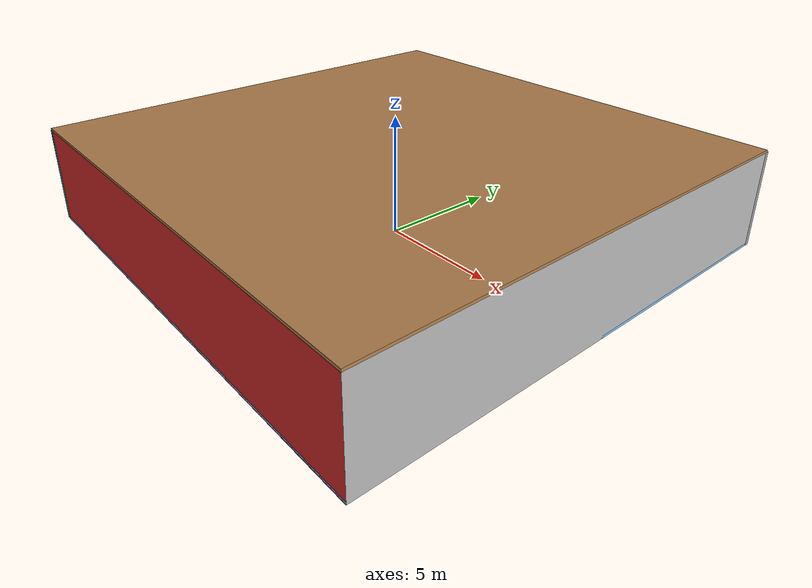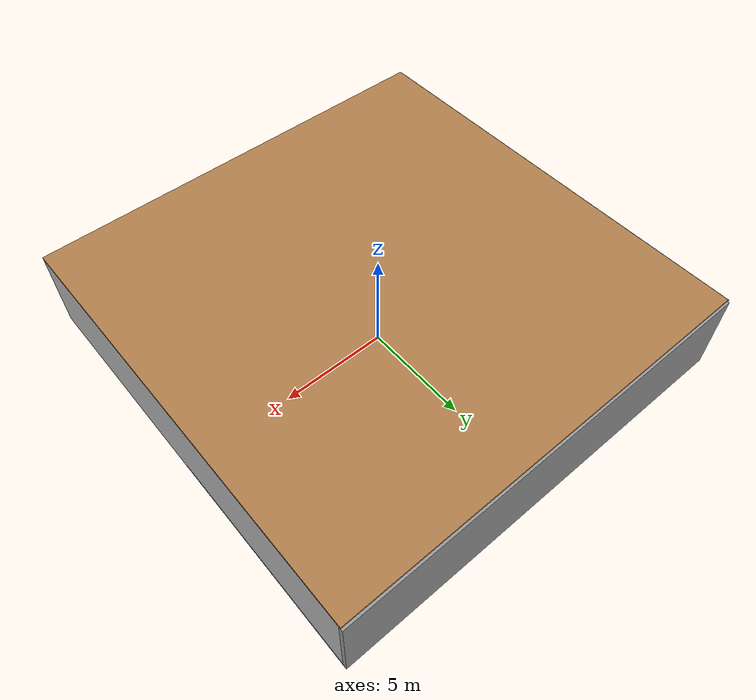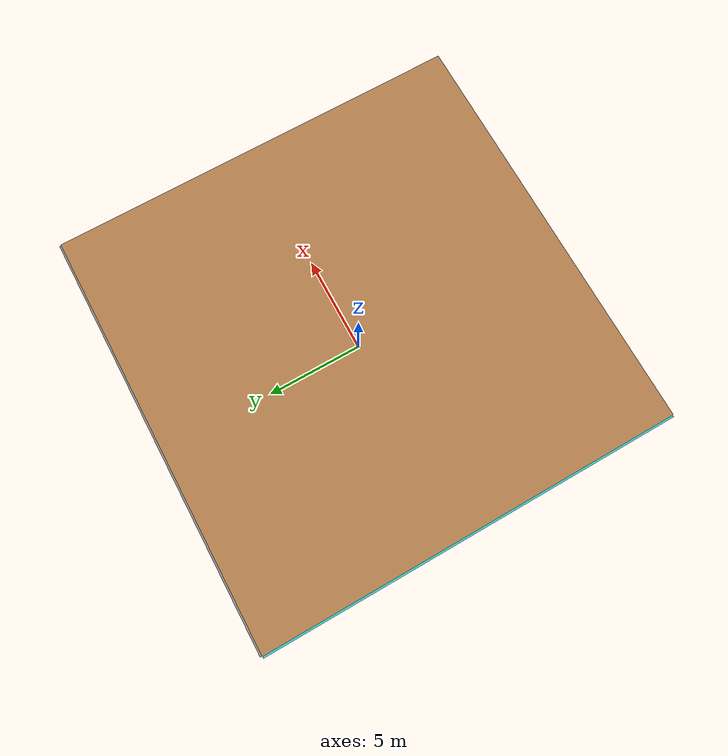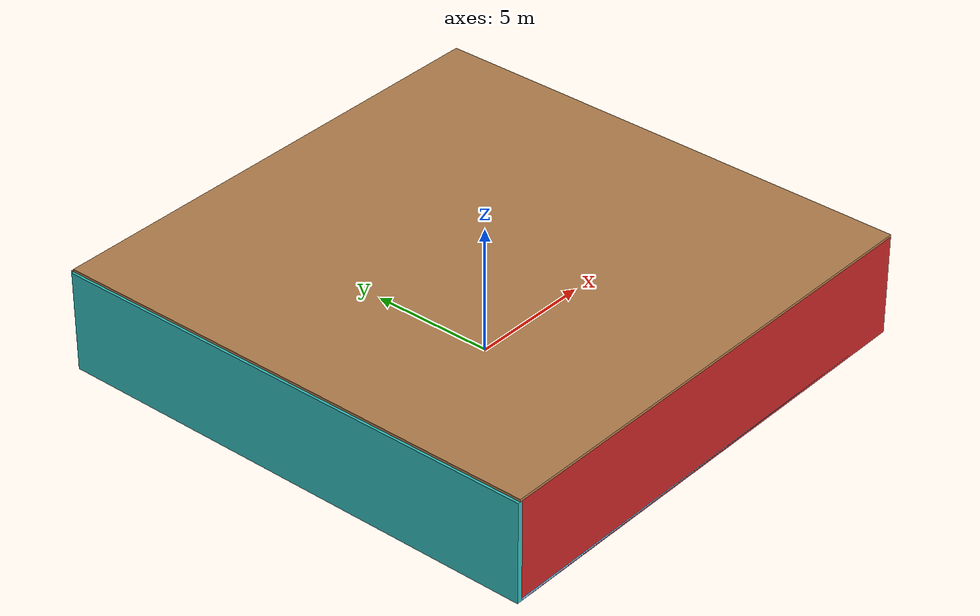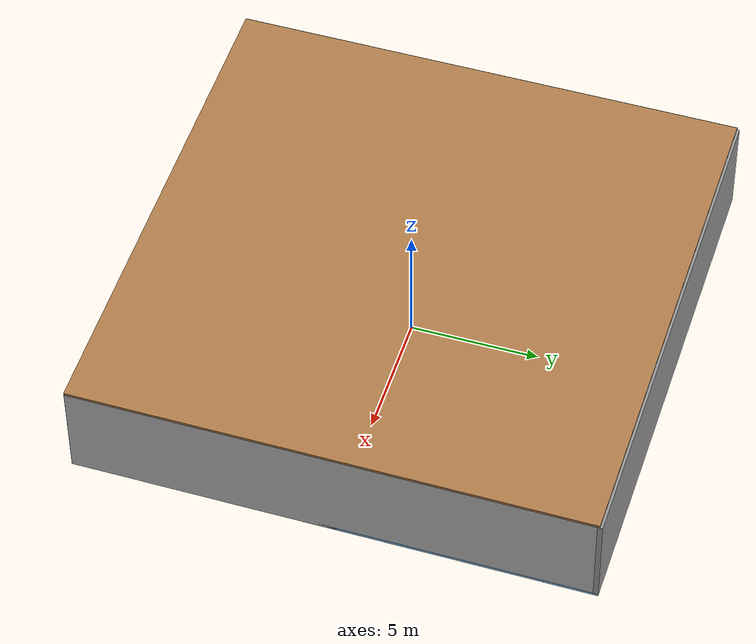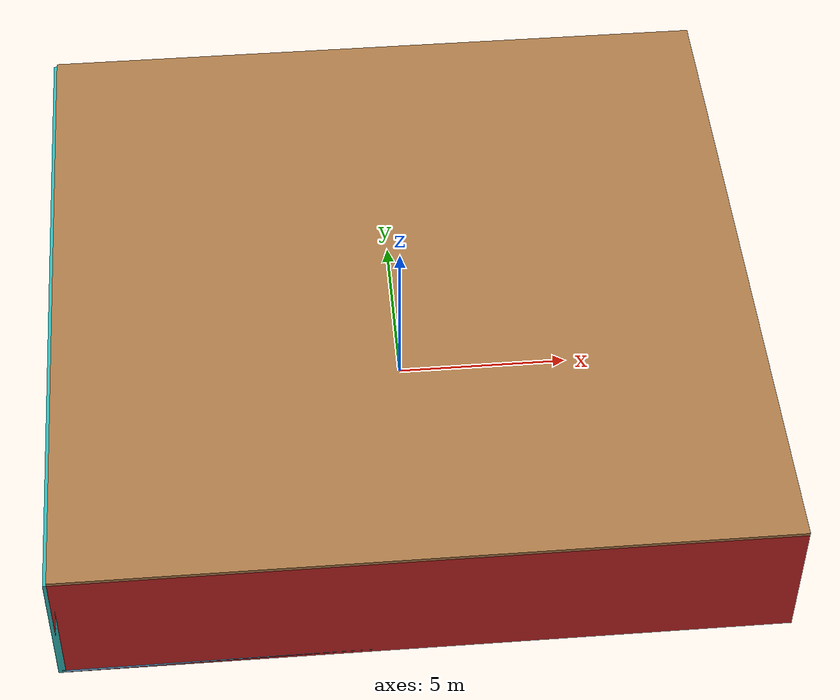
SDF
<sdf version="1.4">
 <world name="default">
  <physics type="ode">
   <max_step_size>0.001</max_step_size>
   <real_time_factor>1</real_time_factor>
   <real_time_update_rate>1000</real_time_update_rate>
   <gravity>0 0 -9.8</gravity>
  </physics>
  <scene><ambient>0.4 0.4 0.4 1</ambient><background>0.7 0.7 0.7 1</background><shadows>1</shadows></scene>
  <model name="Surrounding">
   <static>1</static>
   <link name="Ceiling">
    <collision name="Ceiling_Collision"><geometry><box><size>20 20 0.1</size></box></geometry></collision>
    <visual name="Ceiling_Visual">
     <geometry><box><size>20 20 0.1</size></box></geometry>
     <material>
      <script><uri>file://media/materials/scripts/gazebo.material</uri><name>Gazebo/Wood</name></script>
     </material>
    </visual>
    <pose>0 0 4.05 0 0 0</pose>
   </link>
   <link name="Wall_South">
    <collision name="Wall_South_Collision">
     <geometry><box><size>20 0 4</size></box></geometry>
     <pose>0 0 2 0 -0 0</pose>
    </collision>
    <visual name="Wall_South_Visual">
     <pose>0 0 2 0 -0 0</pose>
     <geometry><box><size>20 0 4</size></box></geometry>
     <material>
      <script><uri>file://media/materials/scripts/gazebo.material</uri><name>Gazebo/Red</name></script>
     </material>
    </visual>
    <velocity_decay><linear>0</linear><angular>0</angular></velocity_decay>
    <pose>0 -10 0 0 -0 0</pose>
   </link>
   <link name="Wall_East">
    <collision name="Wall_21_Collision">
     <geometry><box><size>20 0 4</size></box></geometry>
     <pose>0 0 2 0 -0 0</pose>
    </collision>
    <visual name="Wall_21_Visual">
     <pose>0 0 2 0 -0 0</pose>
     <geometry><box><size>20 0 4</size></box></geometry>
     <material>
      <script><uri>file://media/materials/scripts/gazebo.material</uri><name>Gazebo/CloudySky</name></script>
     </material>
    </visual>
    <velocity_decay><linear>0</linear><angular>0</angular></velocity_decay>
    <pose>10 0 0 0 -0 1.5708</pose>
   </link>
   <link name="Wall_North">
    <collision name="Wall_22_Collision">
     <geometry><box><size>20 0.2 4</size></box></geometry>
     <pose>0 0 2 0 -0 0</pose>
    </collision>
    <visual name="Wall_22_Visual">
     <pose>0 0 2 0 -0 0</pose>
     <geometry><box><size>20 0.2 4</size></box></geometry>
     <material>
      <script><uri>file://media/materials/scripts/gazebo.material</uri><name>Gazebo/GreyGradientSky</name></script>
     </material>
    </visual>
    <velocity_decay><linear>0</linear><angular>0</angular></velocity_decay>
    <pose>0 10 0 0 -0 0</pose>
   </link>
   <link name="Wall_West">
    <collision name="Wall_23_Collision">
     <geometry><box><size>20 0.2 4</size></box></geometry>
     <pose>0 0 2 0 -0 0</pose>
    </collision>
    <visual name="Wall_23_Visual">
     <pose>0 0 2 0 -0 0</pose>
     <geometry><box><size>20 0.2 4</size></box></geometry>
     <material>
      <script><uri>file://media/materials/scripts/gazebo.material</uri><name>Gazebo/TurquoiseGlow</name></script>
     </material>
    </visual>
    <velocity_decay><linear>0</linear><angular>0</angular></velocity_decay>
    <pose>-10 0 0 0 0 -1.5708</pose>
   </link>
   <link name="Ground_link">
    <collision name="collision">
     <pose>0 0 .05 0 -0 0</pose>
     <geometry><box><size>20 20 0.1</size></box></geometry>
    </collision>
    <visual name="visual">
     <pose>0 0 .05 0 -0 0</pose>
     <geometry><box><size>20 20 0.1</size></box></geometry>
     <material>
      <script><uri>file://media/materials/scripts/gazebo.material</uri><name>Gazebo/SkyBlue</name></script>
     </material>
    </visual>
   </link>
   <static>1</static>
  </model>
  <spherical_coordinates>
   <surface_model>EARTH_WGS84</surface_model>
   <latitude_deg>0</latitude_deg>
   <longitude_deg>0</longitude_deg>
   <elevation>0</elevation>
   <heading_deg>0</heading_deg>
  </spherical_coordinates>
  <light name="lightball_0" type="diffuse">
   <diffuse>0.8 0.8 0.8 1</diffuse>
   <specular>0.2 0.2 0.2 1</specular>
   <attenuation>
    <range>100</range>
    <constant>0.7</constant>
    <linear>0.01</linear>
    <quadratic>0.001</quadratic>
   </attenuation>
   <direction>-0.5 0.1 -0.9</direction>
   <pose>4.19912439612 0.781083919486 2.86121865603 0 0 0</pose>
  </light>
  <light name="lightball_1" type="diffuse">
   <diffuse>0.8 0.8 0.8 1</diffuse>
   <specular>0.2 0.2 0.2 1</specular>
   <attenuation>
    <range>100</range>
    <constant>0.7</constant>
    <linear>0.01</linear>
    <quadratic>0.001</quadratic>
   </attenuation>
   <direction>-0.5 0.1 -0.9</direction>
   <pose>2.27291461354 8.08223620297 2.41289507735 0 0 0</pose>
  </light>
  <light name="lightball_2" type="diffuse">
   <diffuse>0.8 0.8 0.8 1</diffuse>
   <specular>0.2 0.2 0.2 1</specular>
   <attenuation>
    <range>100</range>
    <constant>0.7</constant>
    <linear>0.01</linear>
    <quadratic>0.001</quadratic>
   </attenuation>
   <direction>-0.5 0.1 -0.9</direction>
   <pose>5.53712742977 -5.51260187524 1.47997596284 0 0 0</pose>
  </light>
  <light name="lightball_3" type="diffuse">
   <diffuse>0.8 0.8 0.8 1</diffuse>
   <specular>0.2 0.2 0.2 1</specular>
   <attenuation>
    <range>100</range>
    <constant>0.7</constant>
    <linear>0.01</linear>
    <quadratic>0.001</quadratic>
   </attenuation>
   <direction>-0.5 0.1 -0.9</direction>
   <pose>8.91086905192 8.11170321483 1.41028383501 0 0 0</pose>
  </light>
  <light name="lightball_4" type="diffuse">
   <diffuse>0.8 0.8 0.8 1</diffuse>
   <specular>0.2 0.2 0.2 1</specular>
   <attenuation>
    <range>100</range>
    <constant>0.7</constant>
    <linear>0.01</linear>
    <quadratic>0.001</quadratic>
   </attenuation>
   <direction>-0.5 0.1 -0.9</direction>
   <pose>2.9546311909 -3.48667800464 2.78023770572 0 0 0</pose>
  </light>
  <light name="lightball_5" type="diffuse">
   <diffuse>0.8 0.8 0.8 1</diffuse>
   <specular>0.2 0.2 0.2 1</specular>
   <attenuation>
    <range>100</range>
    <constant>0.7</constant>
    <linear>0.01</linear>
    <quadratic>0.001</quadratic>
   </attenuation>
   <direction>-0.5 0.1 -0.9</direction>
   <pose>-1.78385963636 -0.71763447195 3.07047534292 0 0 0</pose>
  </light>
  <light name="lightball_6" type="diffuse">
   <diffuse>0.8 0.8 0.8 1</diffuse>
   <specular>0.2 0.2 0.2 1</specular>
   <attenuation>
    <range>100</range>
    <constant>0.7</constant>
    <linear>0.01</linear>
    <quadratic>0.001</quadratic>
   </attenuation>
   <direction>-0.5 0.1 -0.9</direction>
   <pose>-0.826310078793 3.5483666785 1.73061021946 0 0 0</pose>
  </light>
  <light name="lightball_7" type="diffuse">
   <diffuse>0.8 0.8 0.8 1</diffuse>
   <specular>0.2 0.2 0.2 1</specular>
   <attenuation>
    <range>100</range>
    <constant>0.7</constant>
    <linear>0.01</linear>
    <quadratic>0.001</quadratic>
   </attenuation>
   <direction>-0.5 0.1 -0.9</direction>
   <pose>-2.07882744516 9.29225134815 1.13893204987 0 0 0</pose>
  </light>
  <light name="lightball_8" type="diffuse">
   <diffuse>0.8 0.8 0.8 1</diffuse>
   <specular>0.2 0.2 0.2 1</specular>
   <attenuation>
    <range>100</range>
    <constant>0.7</constant>
    <linear>0.01</linear>
    <quadratic>0.001</quadratic>
   </attenuation>
   <direction>-0.5 0.1 -0.9</direction>
   <pose>5.10607737525 6.98790892376 3.24612489597 0 0 0</pose>
  </light>
  <light name="lightball_9" type="diffuse">
   <diffuse>0.8 0.8 0.8 1</diffuse>
   <specular>0.2 0.2 0.2 1</specular>
   <attenuation>
    <range>100</range>
    <constant>0.7</constant>
    <linear>0.01</linear>
    <quadratic>0.001</quadratic>
   </attenuation>
   <direction>-0.5 0.1 -0.9</direction>
   <pose>3.34897162826 7.54321533321 1.57873419069 0 0 0</pose>
  </light>
  <include>
   <uri>model://textured_shapes</uri>
   <pose>-7.17715667027 -4.79497540917 0 0 0 3.07619902722</pose>
  </include>
  <include>
   <uri>model://textured_shapes</uri>
   <pose>-5.22143961594 -1.47327995158 0 0 0 2.91168580227</pose>
  </include>
  <include>
   <uri>model://textured_shapes</uri>
   <pose>-5.14420060346 7.58996788064 0 0 0 0.338123172894</pose>
  </include>
  <include>
   <uri>model://textured_shapes</uri>
   <pose>-1.43608215039 2.08926680321 0 0 0 0.57806360491</pose>
  </include>
  <include>
   <uri>model://construction_cone</uri>
   <pose>4.52600809957 -2.04068011262 0 0 0 0.49360076812</pose>
  </include>
  <include><uri>model://cabinet</uri><pose>7.07261546154 -8.26378384326 0 0 0 0.838777524515</pose></include>
 </world>
</sdf>

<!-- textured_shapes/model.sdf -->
<sdf version="1.6">
  <model name="textured_shapes">
    <pose>0 0 0.5 0 0 0</pose>
    <link name="box">
      <pose>0 -1.5 0 0 0 0</pose>
      <collision name="collision">
        <geometry>
          <box>
            <size>1 1 1</size>
          </box>
        </geometry>
      </collision>
      <visual name="visual">
        <geometry>
          <box>
            <size>1 1 1</size>
          </box>
        </geometry>
        <material>
          <script>
            <uri>model://../model_source/models/textured_shapes/materials/scripts</uri>
            <uri>model://../model_source/models/textured_shapes/materials/textures</uri>
            <name>TexturedShape/Squares</name>
          </script>
        </material>
      </visual>
    </link>
    <link name="sphere">
      <collision name="collision">
        <geometry>
          <sphere>
            <radius>0.5</radius>
          </sphere>
        </geometry>
      </collision>
      <visual name="visual">
        <geometry>
          <sphere>
            <radius>0.5</radius>
          </sphere>
        </geometry>
        <material>
          <script>
            <uri>model://../model_source/models/textured_shapes/materials/scripts</uri>
            <uri>model://../model_source/models/textured_shapes/materials/textures</uri>
            <name>TexturedShape/Squares</name>
          </script>
        </material>
      </visual>
    </link>
    <link name="cylinder">
      <pose>0 1.5 0 0 0 0</pose>
      <collision name="collision">
        <geometry>
          <cylinder>
            <radius>0.5</radius>
            <length>1</length>
          </cylinder>
        </geometry>
      </collision>
      <visual name="visual">
        <geometry>
          <cylinder>
            <radius>0.5</radius>
            <length>1</length>
          </cylinder>
        </geometry>
        <material>
          <script>
            <uri>model://../model_source/models/textured_shapes/materials/scripts</uri>
            <uri>model://../model_source/models/textured_shapes/materials/textures</uri>
            <name>TexturedShape/Squares</name>
          </script>
        </material>
      </visual>
    </link>
  </model>
</sdf>

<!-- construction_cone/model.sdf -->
<sdf version="1.5">
  <model name="Construction Cone">
    <link name="link">
      <collision name="collision">
        <geometry>
          <mesh>
            <scale>10 10 10</scale>
            <uri>file://isr-testbed/construction_cone/meshes/construction_cone.dae</uri>
          </mesh>
        </geometry>
      </collision>
      <visual name="visual">
        <geometry>
          <mesh>
            <scale>10 10 10</scale>
            <uri>file://isr-testbed/construction_cone/meshes/construction_cone.dae</uri>
          </mesh>
        </geometry>
      </visual>
    </link>
  </model>
</sdf>

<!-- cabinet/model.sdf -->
<sdf version="1.5">
  <model name="cabinet">
    <static>true</static>
    <link name="cabinet_bottom_plate">
      <inertial>
        <pose>0 0 -1 0 0 0</pose>
        <inertia>
          <ixx>2.050000</ixx>
          <ixy>0</ixy>
          <ixz>0</ixz>
          <iyy>2.050000</iyy>
          <iyz>0</iyz>
          <izz>2.050000</izz>
        </inertia>
        <mass>25.000000</mass>
      </inertial>
      <collision name="cabinet_bottom_plate_geom">
        <pose>0 0 0.010000 0 0 0</pose>
        <geometry>
          <box>
            <size>0.450000 0.450000 0.020000</size>
          </box>
        </geometry>
      </collision>
      <visual name="cabinet_bottom_plate_geom_visual">
        <pose>0 0 0.010000 0 0 0</pose>
        <geometry>
          <box>
            <size>0.450000 0.450000 0.020000</size>
          </box>
        </geometry>
        <material>
          <script>
            <uri>model://media/materials/scripts/gazebo.material</uri>
            <name>Gazebo/Wood</name>
          </script>
        </material>
      </visual>
      <collision name="cabinet_bottom_plate_geom_cabinet_back_plate">
        <pose>0.235000 0 0.510000 0 0 0</pose>
        <geometry>
          <box>
            <size>0.020000 0.450000 1.020000</size>
          </box>
        </geometry>
      </collision>
      <visual name="cabinet_bottom_plate_geom_cabinet_back_plate_visual">
        <pose>0.235000 0 0.510000 0 0 0</pose>
        <geometry>
          <box>
            <size>0.020000 0.450000 1.020000</size>
          </box>
        </geometry>
        <material>
          <script>
            <uri>model://media/materials/scripts/gazebo.material</uri>
            <name>Gazebo/Wood</name>
          </script>
        </material>
      </visual>
      <collision name="cabinet_bottom_plate_geom_cabinet_left_plate">
        <pose>0 0.235000 0.510000 0 0 0</pose>
        <geometry>
          <box>
            <size>0.450000 0.020000 1.020000</size>
          </box>
        </geometry>
      </collision>
      <visual name="cabinet_bottom_plate_geom_cabinet_left_plate_visual">
        <pose>0 0.235000 0.510000 0 0 0</pose>
        <geometry>
          <box>
            <size>0.450000 0.020000 1.020000</size>
          </box>
        </geometry>
        <material>
          <script>
            <uri>model://media/materials/scripts/gazebo.material</uri>
            <name>Gazebo/Wood</name>
          </script>
        </material>
      </visual>
      <collision name="cabinet_bottom_plate_geom_cabinet_middle_plate">
        <pose>0 0 0.510000 0 0 0</pose>
        <geometry>
          <box>
            <size>0.450000 0.450000 0.020000</size>
          </box>
        </geometry>
      </collision>
      <visual name="cabinet_bottom_plate_geom_cabinet_middle_plate_visual">
        <pose>0 0 0.510000 0 0 0</pose>
        <geometry>
          <box>
            <size>0.450000 0.450000 0.020000</size>
          </box>
        </geometry>
        <material>
          <script>
            <uri>model://media/materials/scripts/gazebo.material</uri>
            <name>Gazebo/Wood</name>
          </script>
        </material>
      </visual>
      <collision name="cabinet_bottom_plate_geom_cabinet_right_plate">
        <pose>0 -0.235000 0.510000 0 0 0</pose>
        <geometry>
          <box>
            <size>0.450000 0.020000 1.020000</size>
          </box>
        </geometry>
      </collision>
      <visual name="cabinet_bottom_plate_geom_cabinet_right_plate_visual">
        <pose>0 -0.235000 0.510000 0 0 0</pose>
        <geometry>
          <box>
            <size>0.450000 0.020000 1.020000</size>
          </box>
        </geometry>
        <material>
          <script>
            <uri>model://media/materials/scripts/gazebo.material</uri>
            <name>Gazebo/Wood</name>
          </script>
        </material>
      </visual>
      <collision name="cabinet_bottom_plate_geom_cabinet_top_plate">
        <pose>0 0 1.010000 0 0 0</pose>
        <geometry>
          <box>
            <size>0.450000 0.450000 0.020000</size>
          </box>
        </geometry>
      </collision>
      <visual name="cabinet_bottom_plate_geom_cabinet_top_plate_visual">
        <pose>0 0 1.010000 0 0 0</pose>
        <geometry>
          <box>
            <size>0.450000 0.450000 0.020000</size>
          </box>
        </geometry>
        <material>
          <script>
            <uri>model://media/materials/scripts/gazebo.material</uri>
            <name>Gazebo/Wood</name>
          </script>
        </material>
      </visual>
    </link>
  </model>
</sdf>
